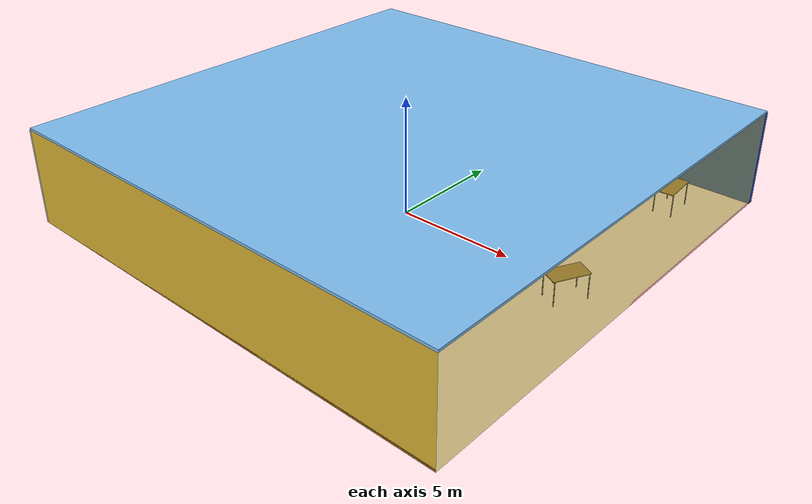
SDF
<sdf version="1.4">
 <world name="default">
  <physics type="ode">
   <max_step_size>0.001</max_step_size>
   <real_time_factor>1</real_time_factor>
   <real_time_update_rate>1000</real_time_update_rate>
   <gravity>0 0 -9.8</gravity>
  </physics>
  <scene><ambient>0.4 0.4 0.4 1</ambient><background>0.7 0.7 0.7 1</background><shadows>1</shadows></scene>
  <model name="Surrounding">
   <static>1</static>
   <link name="Ceiling">
    <collision name="Ceiling_Collision"><geometry><box><size>20 20 0.1</size></box></geometry></collision>
    <visual name="Ceiling_Visual">
     <geometry><box><size>20 20 0.1</size></box></geometry>
     <material>
      <script><uri>file://media/materials/scripts/gazebo.material</uri><name>Gazebo/SkyBlue</name></script>
     </material>
    </visual>
    <pose>0 0 4.05 0 0 0</pose>
   </link>
   <link name="Wall_South">
    <collision name="Wall_South_Collision">
     <geometry><box><size>20 0 4</size></box></geometry>
     <pose>0 0 2 0 -0 0</pose>
    </collision>
    <visual name="Wall_South_Visual">
     <pose>0 0 2 0 -0 0</pose>
     <geometry><box><size>20 0 4</size></box></geometry>
     <material>
      <script><uri>file://media/materials/scripts/gazebo.material</uri><name>Gazebo/Gold</name></script>
     </material>
    </visual>
    <velocity_decay><linear>0</linear><angular>0</angular></velocity_decay>
    <pose>0 -10 0 0 -0 0</pose>
   </link>
   <link name="Wall_East">
    <collision name="Wall_21_Collision">
     <geometry><box><size>20 0 4</size></box></geometry>
     <pose>0 0 2 0 -0 0</pose>
    </collision>
    <visual name="Wall_21_Visual">
     <pose>0 0 2 0 -0 0</pose>
     <geometry><box><size>20 0 4</size></box></geometry>
     <material>
      <script>
       <uri>file://media/materials/scripts/gazebo.material</uri>
       <name>Gazebo/YellowTransparent</name>
      </script>
     </material>
    </visual>
    <velocity_decay><linear>0</linear><angular>0</angular></velocity_decay>
    <pose>10 0 0 0 -0 1.5708</pose>
   </link>
   <link name="Wall_North">
    <collision name="Wall_22_Collision">
     <geometry><box><size>20 0.2 4</size></box></geometry>
     <pose>0 0 2 0 -0 0</pose>
    </collision>
    <visual name="Wall_22_Visual">
     <pose>0 0 2 0 -0 0</pose>
     <geometry><box><size>20 0.2 4</size></box></geometry>
     <material>
      <script><uri>file://media/materials/scripts/gazebo.material</uri><name>Gazebo/Blue</name></script>
     </material>
    </visual>
    <velocity_decay><linear>0</linear><angular>0</angular></velocity_decay>
    <pose>0 10 0 0 -0 0</pose>
   </link>
   <link name="Wall_West">
    <collision name="Wall_23_Collision">
     <geometry><box><size>20 0.2 4</size></box></geometry>
     <pose>0 0 2 0 -0 0</pose>
    </collision>
    <visual name="Wall_23_Visual">
     <pose>0 0 2 0 -0 0</pose>
     <geometry><box><size>20 0.2 4</size></box></geometry>
     <material>
      <script><uri>file://media/materials/scripts/gazebo.material</uri><name>Gazebo/PaintedWall</name></script>
     </material>
    </visual>
    <velocity_decay><linear>0</linear><angular>0</angular></velocity_decay>
    <pose>-10 0 0 0 0 -1.5708</pose>
   </link>
   <link name="Ground_link">
    <collision name="collision">
     <pose>0 0 .05 0 -0 0</pose>
     <geometry><box><size>20 20 0.1</size></box></geometry>
    </collision>
    <visual name="visual">
     <pose>0 0 .05 0 -0 0</pose>
     <geometry><box><size>20 20 0.1</size></box></geometry>
     <material>
      <script><uri>file://media/materials/scripts/gazebo.material</uri><name>Gazebo/RedTransparent</name></script>
     </material>
    </visual>
   </link>
   <static>1</static>
  </model>
  <spherical_coordinates>
   <surface_model>EARTH_WGS84</surface_model>
   <latitude_deg>0</latitude_deg>
   <longitude_deg>0</longitude_deg>
   <elevation>0</elevation>
   <heading_deg>0</heading_deg>
  </spherical_coordinates>
  <light name="lightball_0" type="diffuse">
   <diffuse>0.8 0.8 0.8 1</diffuse>
   <specular>0.2 0.2 0.2 1</specular>
   <attenuation>
    <range>100</range>
    <constant>0.7</constant>
    <linear>0.01</linear>
    <quadratic>0.001</quadratic>
   </attenuation>
   <direction>-0.5 0.1 -0.9</direction>
   <pose>4.56217212752 0.953492856106 1.79328890834 0 0 0</pose>
  </light>
  <light name="lightball_1" type="diffuse">
   <diffuse>0.8 0.8 0.8 1</diffuse>
   <specular>0.2 0.2 0.2 1</specular>
   <attenuation>
    <range>100</range>
    <constant>0.7</constant>
    <linear>0.01</linear>
    <quadratic>0.001</quadratic>
   </attenuation>
   <direction>-0.5 0.1 -0.9</direction>
   <pose>-0.0594076858995 -8.31042546901 2.1399746903 0 0 0</pose>
  </light>
  <light name="lightball_2" type="diffuse">
   <diffuse>0.8 0.8 0.8 1</diffuse>
   <specular>0.2 0.2 0.2 1</specular>
   <attenuation>
    <range>100</range>
    <constant>0.7</constant>
    <linear>0.01</linear>
    <quadratic>0.001</quadratic>
   </attenuation>
   <direction>-0.5 0.1 -0.9</direction>
   <pose>-0.165441537382 -8.19800652583 1.27143381997 0 0 0</pose>
  </light>
  <light name="lightball_3" type="diffuse">
   <diffuse>0.8 0.8 0.8 1</diffuse>
   <specular>0.2 0.2 0.2 1</specular>
   <attenuation>
    <range>100</range>
    <constant>0.7</constant>
    <linear>0.01</linear>
    <quadratic>0.001</quadratic>
   </attenuation>
   <direction>-0.5 0.1 -0.9</direction>
   <pose>3.64357515721 -2.8459097687 2.3449599007 0 0 0</pose>
  </light>
  <light name="lightball_4" type="diffuse">
   <diffuse>0.8 0.8 0.8 1</diffuse>
   <specular>0.2 0.2 0.2 1</specular>
   <attenuation>
    <range>100</range>
    <constant>0.7</constant>
    <linear>0.01</linear>
    <quadratic>0.001</quadratic>
   </attenuation>
   <direction>-0.5 0.1 -0.9</direction>
   <pose>8.81631290043 5.65862860164 2.41294430501 0 0 0</pose>
  </light>
  <light name="lightball_5" type="diffuse">
   <diffuse>0.8 0.8 0.8 1</diffuse>
   <specular>0.2 0.2 0.2 1</specular>
   <attenuation>
    <range>100</range>
    <constant>0.7</constant>
    <linear>0.01</linear>
    <quadratic>0.001</quadratic>
   </attenuation>
   <direction>-0.5 0.1 -0.9</direction>
   <pose>-1.66665871601 -5.67733588284 2.36610013677 0 0 0</pose>
  </light>
  <light name="lightball_6" type="diffuse">
   <diffuse>0.8 0.8 0.8 1</diffuse>
   <specular>0.2 0.2 0.2 1</specular>
   <attenuation>
    <range>100</range>
    <constant>0.7</constant>
    <linear>0.01</linear>
    <quadratic>0.001</quadratic>
   </attenuation>
   <direction>-0.5 0.1 -0.9</direction>
   <pose>-4.39155396483 -4.57742450164 1.94895435802 0 0 0</pose>
  </light>
  <include><uri>model://cabinet</uri><pose>-5.1135651023 1.12201104596 0 0 0 3.01246026075</pose></include>
  <include><uri>model://cabinet</uri><pose>-4.29635644855 7.27324293432 0 0 0 2.72246692974</pose></include>
  <include>
   <uri>model://construction_cone</uri>
   <pose>-1.40091206107 7.39056707083 0 0 0 1.34962192639</pose>
  </include>
  <include><uri>model://cabinet</uri><pose>4.04807125793 7.5974444545 0 0 0 1.84647859316</pose></include>
  <include><uri>model://table</uri><pose>8.0298408847 -0.734315484784 0 0 0 1.10363214175</pose></include>
  <include><uri>model://table</uri><pose>7.70710737472 7.39541249526 0 0 0 1.63260974791</pose></include>
 </world>
</sdf>

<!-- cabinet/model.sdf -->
<sdf version="1.5">
  <model name="cabinet">
    <static>true</static>
    <link name="cabinet_bottom_plate">
      <inertial>
        <pose>0 0 -1 0 0 0</pose>
        <inertia>
          <ixx>2.050000</ixx>
          <ixy>0</ixy>
          <ixz>0</ixz>
          <iyy>2.050000</iyy>
          <iyz>0</iyz>
          <izz>2.050000</izz>
        </inertia>
        <mass>25.000000</mass>
      </inertial>
      <collision name="cabinet_bottom_plate_geom">
        <pose>0 0 0.010000 0 0 0</pose>
        <geometry>
          <box>
            <size>0.450000 0.450000 0.020000</size>
          </box>
        </geometry>
      </collision>
      <visual name="cabinet_bottom_plate_geom_visual">
        <pose>0 0 0.010000 0 0 0</pose>
        <geometry>
          <box>
            <size>0.450000 0.450000 0.020000</size>
          </box>
        </geometry>
        <material>
          <script>
            <uri>model://media/materials/scripts/gazebo.material</uri>
            <name>Gazebo/Wood</name>
          </script>
        </material>
      </visual>
      <collision name="cabinet_bottom_plate_geom_cabinet_back_plate">
        <pose>0.235000 0 0.510000 0 0 0</pose>
        <geometry>
          <box>
            <size>0.020000 0.450000 1.020000</size>
          </box>
        </geometry>
      </collision>
      <visual name="cabinet_bottom_plate_geom_cabinet_back_plate_visual">
        <pose>0.235000 0 0.510000 0 0 0</pose>
        <geometry>
          <box>
            <size>0.020000 0.450000 1.020000</size>
          </box>
        </geometry>
        <material>
          <script>
            <uri>model://media/materials/scripts/gazebo.material</uri>
            <name>Gazebo/Wood</name>
          </script>
        </material>
      </visual>
      <collision name="cabinet_bottom_plate_geom_cabinet_left_plate">
        <pose>0 0.235000 0.510000 0 0 0</pose>
        <geometry>
          <box>
            <size>0.450000 0.020000 1.020000</size>
          </box>
        </geometry>
      </collision>
      <visual name="cabinet_bottom_plate_geom_cabinet_left_plate_visual">
        <pose>0 0.235000 0.510000 0 0 0</pose>
        <geometry>
          <box>
            <size>0.450000 0.020000 1.020000</size>
          </box>
        </geometry>
        <material>
          <script>
            <uri>model://media/materials/scripts/gazebo.material</uri>
            <name>Gazebo/Wood</name>
          </script>
        </material>
      </visual>
      <collision name="cabinet_bottom_plate_geom_cabinet_middle_plate">
        <pose>0 0 0.510000 0 0 0</pose>
        <geometry>
          <box>
            <size>0.450000 0.450000 0.020000</size>
          </box>
        </geometry>
      </collision>
      <visual name="cabinet_bottom_plate_geom_cabinet_middle_plate_visual">
        <pose>0 0 0.510000 0 0 0</pose>
        <geometry>
          <box>
            <size>0.450000 0.450000 0.020000</size>
          </box>
        </geometry>
        <material>
          <script>
            <uri>model://media/materials/scripts/gazebo.material</uri>
            <name>Gazebo/Wood</name>
          </script>
        </material>
      </visual>
      <collision name="cabinet_bottom_plate_geom_cabinet_right_plate">
        <pose>0 -0.235000 0.510000 0 0 0</pose>
        <geometry>
          <box>
            <size>0.450000 0.020000 1.020000</size>
          </box>
        </geometry>
      </collision>
      <visual name="cabinet_bottom_plate_geom_cabinet_right_plate_visual">
        <pose>0 -0.235000 0.510000 0 0 0</pose>
        <geometry>
          <box>
            <size>0.450000 0.020000 1.020000</size>
          </box>
        </geometry>
        <material>
          <script>
            <uri>model://media/materials/scripts/gazebo.material</uri>
            <name>Gazebo/Wood</name>
          </script>
        </material>
      </visual>
      <collision name="cabinet_bottom_plate_geom_cabinet_top_plate">
        <pose>0 0 1.010000 0 0 0</pose>
        <geometry>
          <box>
            <size>0.450000 0.450000 0.020000</size>
          </box>
        </geometry>
      </collision>
      <visual name="cabinet_bottom_plate_geom_cabinet_top_plate_visual">
        <pose>0 0 1.010000 0 0 0</pose>
        <geometry>
          <box>
            <size>0.450000 0.450000 0.020000</size>
          </box>
        </geometry>
        <material>
          <script>
            <uri>model://media/materials/scripts/gazebo.material</uri>
            <name>Gazebo/Wood</name>
          </script>
        </material>
      </visual>
    </link>
  </model>
</sdf>

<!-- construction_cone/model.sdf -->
<sdf version="1.5">
  <model name="Construction Cone">
    <link name="link">
      <collision name="collision">
        <geometry>
          <mesh>
            <scale>10 10 10</scale>
            <uri>file://isr-testbed/construction_cone/meshes/construction_cone.dae</uri>
          </mesh>
        </geometry>
      </collision>
      <visual name="visual">
        <geometry>
          <mesh>
            <scale>10 10 10</scale>
            <uri>file://isr-testbed/construction_cone/meshes/construction_cone.dae</uri>
          </mesh>
        </geometry>
      </visual>
    </link>
  </model>
</sdf>

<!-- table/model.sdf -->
<sdf version="1.5">
  <model name="table">
    <static>true</static>
    <link name="link">
      <collision name="surface">
        <pose>0 0 1.0 0 0 0</pose>
        <geometry>
          <box>
            <size>1.5 0.8 0.03</size>
          </box>
        </geometry>
        <surface>
          <friction>
            <ode>
              <mu>0.6</mu>
              <mu2>0.6</mu2>
            </ode>
          </friction>
        </surface>
      </collision>
      <visual name="visual1">
        <pose>0 0 1.0 0 0 0</pose>
        <geometry>
          <box>
            <size>1.5 0.8 0.03</size>
          </box>
        </geometry>
        <material>
          <script>
            <uri>model://media/materials/scripts/gazebo.material</uri>
            <name>Gazebo/Wood</name>
          </script>
        </material>
      </visual>
      <collision name="front_left_leg">
        <pose>0.68 0.38 0.5 0 0 0</pose>
        <geometry>
          <cylinder>
            <radius>0.02</radius>
            <length>1.0</length>
          </cylinder>
        </geometry>
      </collision>
      <visual name="front_left_leg">
        <pose>0.68 0.38 0.5 0 0 0</pose>
        <geometry>
          <cylinder>
            <radius>0.02</radius>
            <length>1.0</length>
          </cylinder>
        </geometry>
        <material>
          <script>
            <uri>model://media/materials/scripts/gazebo.material</uri>
            <name>Gazebo/Grey</name>
          </script>
        </material>
      </visual>
      <collision name="front_right_leg">
        <pose>0.68 -0.38 0.5 0 0 0</pose>
        <geometry>
          <cylinder>
            <radius>0.02</radius>
            <length>1.0</length>
          </cylinder>
        </geometry>
      </collision>
      <visual name="front_right_leg">
        <pose>0.68 -0.38 0.5 0 0 0</pose>
        <geometry>
          <cylinder>
            <radius>0.02</radius>
            <length>1.0</length>
          </cylinder>
        </geometry>
        <material>
          <script>
            <uri>model://media/materials/scripts/gazebo.material</uri>
            <name>Gazebo/Grey</name>
          </script>
        </material>
      </visual>
      <collision name="back_right_leg">
        <pose>-0.68 -0.38 0.5 0 0 0</pose>
        <geometry>
          <cylinder>
            <radius>0.02</radius>
            <length>1.0</length>
          </cylinder>
        </geometry>
      </collision>
      <visual name="back_right_leg">
        <pose>-0.68 -0.38 0.5 0 0 0</pose>
        <geometry>
          <cylinder>
            <radius>0.02</radius>
            <length>1.0</length>
          </cylinder>
        </geometry>
        <material>
          <script>
            <uri>model://media/materials/scripts/gazebo.material</uri>
            <name>Gazebo/Grey</name>
          </script>
        </material>
      </visual>
      <collision name="back_left_leg">
        <pose>-0.68 0.38 0.5 0 0 0</pose>
        <geometry>
          <cylinder>
            <radius>0.02</radius>
            <length>1.0</length>
          </cylinder>
        </geometry>
      </collision>
      <visual name="back_left_leg">
        <pose>-0.68 0.38 0.5 0 0 0</pose>
        <geometry>
          <cylinder>
            <radius>0.02</radius>
            <length>1.0</length>
          </cylinder>
        </geometry>
        <material>
          <script>
            <uri>model://media/materials/scripts/gazebo.material</uri>
            <name>Gazebo/Grey</name>
          </script>
        </material>
      </visual>
    </link>
  </model>
</sdf>
